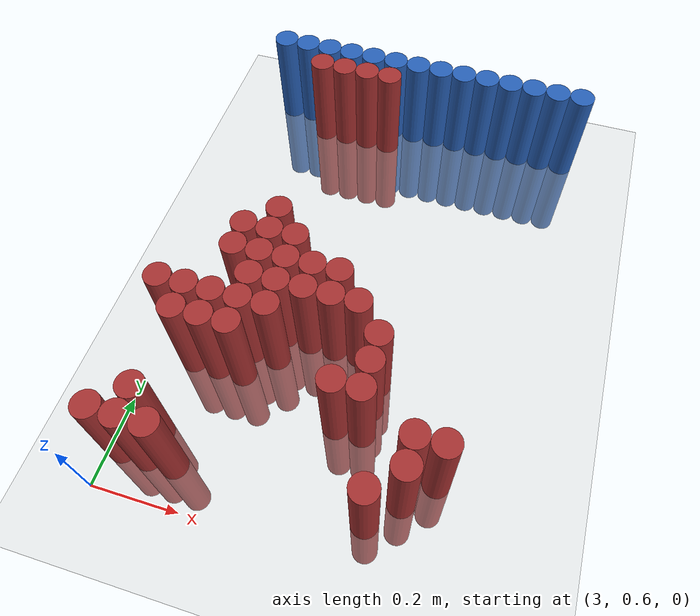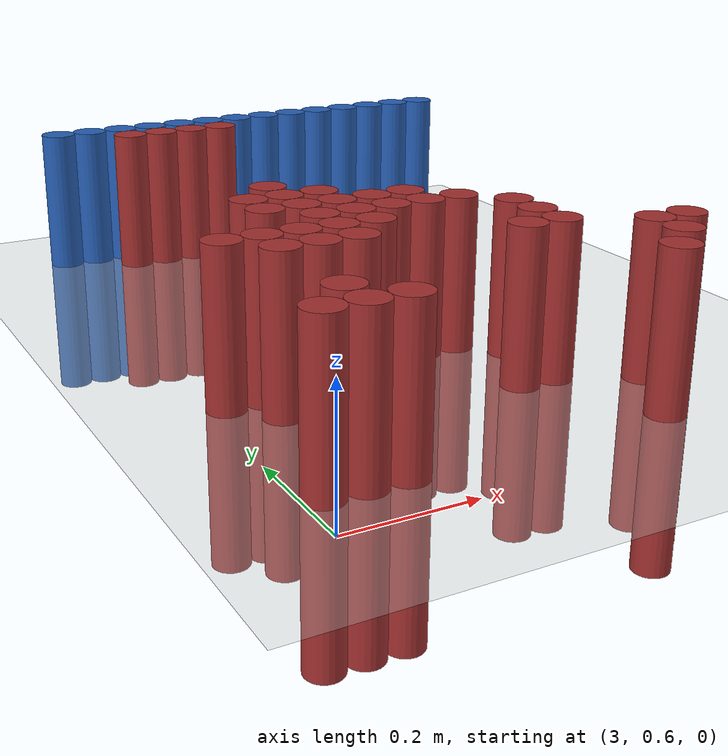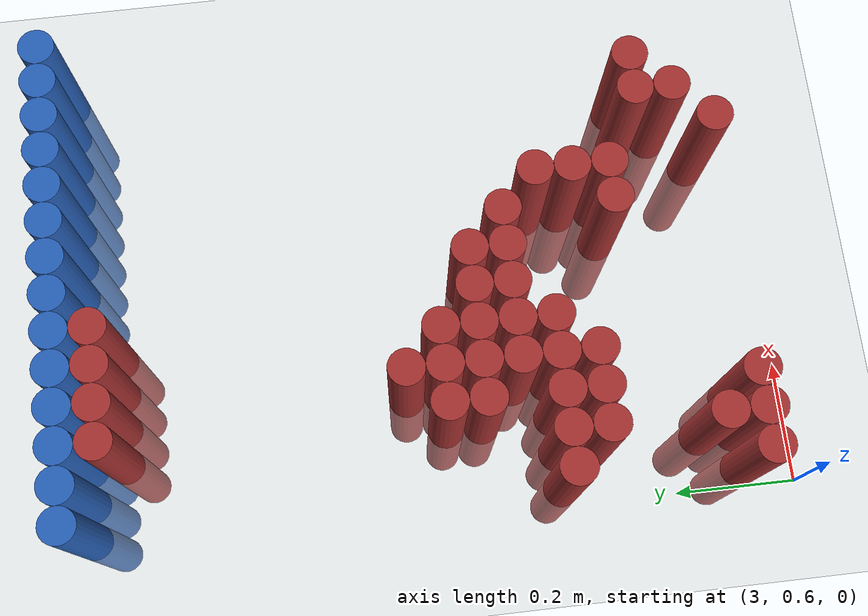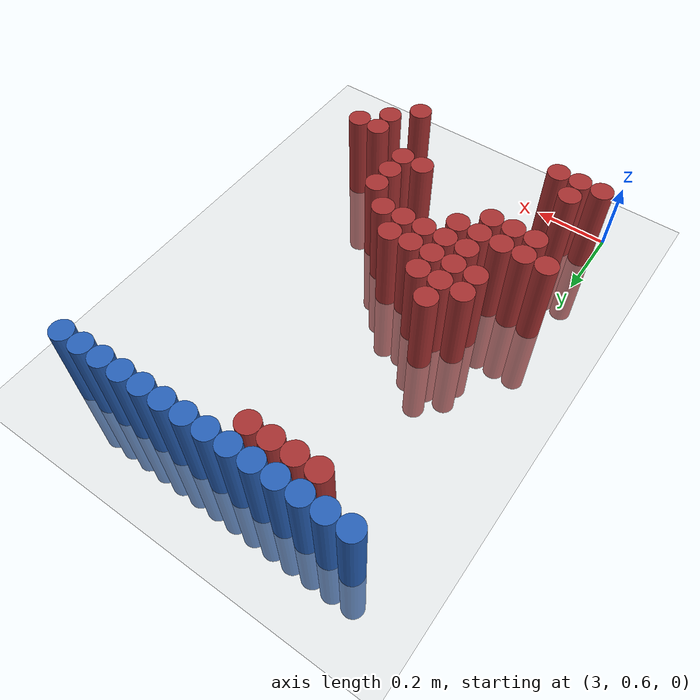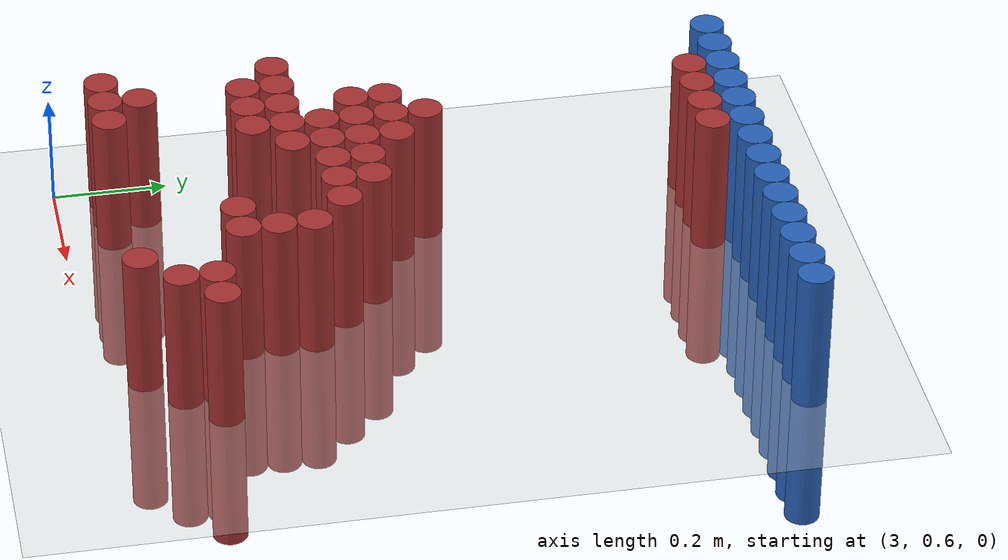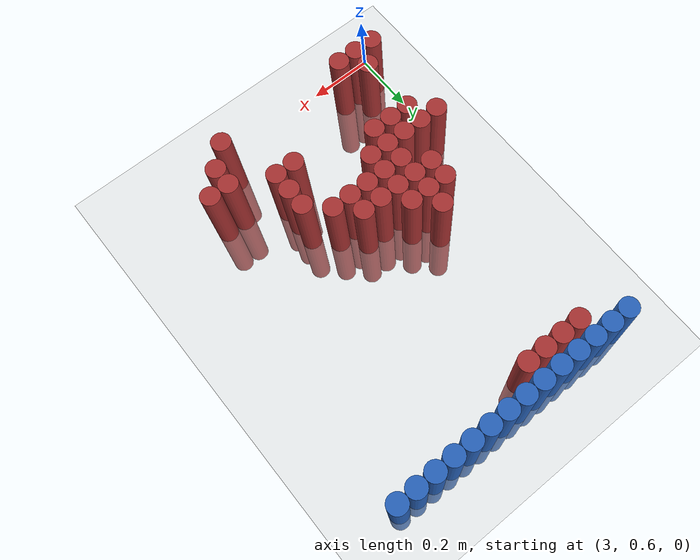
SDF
<sdf version="1.6">
 <world name="default">
  <model name="ground_plane">
   <static>1</static>
   <link name="link">
    <collision name="collision">
     <geometry><plane><normal>0 0 1</normal><size>100 100</size></plane></geometry>
     <surface><friction><ode><mu>100</mu><mu2>50</mu2></ode></friction></surface>
    </collision>
    <visual name="visual">
     <cast_shadows>0</cast_shadows>
     <geometry><plane><normal>0 0 1</normal><size>100 100</size></plane></geometry>
     <material>
      <script><uri>file://media/materials/scripts/gazebo.material</uri><name>Gazebo/Grey</name></script>
     </material>
    </visual>
   </link>
  </model>
  <model name="unit_cylinder_111">
   <static>1</static>
   <pose>3.030000 1.770000 0.000000 0.000000 0.000000 0.000000</pose>
   <link name="link">
    <inertial>
     <mass>1</mass>
     <inertia><ixx>0.145833</ixx><ixy>0</ixy><ixz>0</ixz><iyy>0.145833</iyy><iyz>0</iyz><izz>0.125</izz></inertia>
    </inertial>
    <collision name="collision">
     <geometry><cylinder><radius>0.030000</radius><length>0.5</length></cylinder></geometry>
    </collision>
    <visual name="visual">
     <geometry><cylinder><radius>0.030000</radius><length>0.5</length></cylinder></geometry>
     <material>
      <ambient>0.152000 0.379000 0.720000 1</ambient>
      <diffuse>0.152000 0.379000 0.720000 1</diffuse>
     </material>
     <material>
      <script><name>Gazebo/Grey</name><uri>file://media/materials/scripts/gazebo.material</uri></script>
     </material>
    </visual>
   </link>
  </model>
  <model name="unit_cylinder_112">
   <static>1</static>
   <pose>3.090000 1.770000 0.000000 0.000000 0.000000 0.000000</pose>
   <link name="link">
    <inertial>
     <mass>1</mass>
     <inertia><ixx>0.145833</ixx><ixy>0</ixy><ixz>0</ixz><iyy>0.145833</iyy><iyz>0</iyz><izz>0.125</izz></inertia>
    </inertial>
    <collision name="collision">
     <geometry><cylinder><radius>0.030000</radius><length>0.5</length></cylinder></geometry>
    </collision>
    <visual name="visual">
     <geometry><cylinder><radius>0.030000</radius><length>0.5</length></cylinder></geometry>
     <material>
      <ambient>0.152000 0.379000 0.720000 1</ambient>
      <diffuse>0.152000 0.379000 0.720000 1</diffuse>
     </material>
     <material>
      <script><name>Gazebo/Grey</name><uri>file://media/materials/scripts/gazebo.material</uri></script>
     </material>
    </visual>
   </link>
  </model>
  <model name="unit_cylinder_113">
   <static>1</static>
   <pose>3.150000 1.770000 0.000000 0.000000 0.000000 0.000000</pose>
   <link name="link">
    <inertial>
     <mass>1</mass>
     <inertia><ixx>0.145833</ixx><ixy>0</ixy><ixz>0</ixz><iyy>0.145833</iyy><iyz>0</iyz><izz>0.125</izz></inertia>
    </inertial>
    <collision name="collision">
     <geometry><cylinder><radius>0.030000</radius><length>0.5</length></cylinder></geometry>
    </collision>
    <visual name="visual">
     <geometry><cylinder><radius>0.030000</radius><length>0.5</length></cylinder></geometry>
     <material>
      <ambient>0.152000 0.379000 0.720000 1</ambient>
      <diffuse>0.152000 0.379000 0.720000 1</diffuse>
     </material>
     <material>
      <script><name>Gazebo/Grey</name><uri>file://media/materials/scripts/gazebo.material</uri></script>
     </material>
    </visual>
   </link>
  </model>
  <model name="unit_cylinder_114">
   <static>1</static>
   <pose>3.210000 1.770000 0.000000 0.000000 0.000000 0.000000</pose>
   <link name="link">
    <inertial>
     <mass>1</mass>
     <inertia><ixx>0.145833</ixx><ixy>0</ixy><ixz>0</ixz><iyy>0.145833</iyy><iyz>0</iyz><izz>0.125</izz></inertia>
    </inertial>
    <collision name="collision">
     <geometry><cylinder><radius>0.030000</radius><length>0.5</length></cylinder></geometry>
    </collision>
    <visual name="visual">
     <geometry><cylinder><radius>0.030000</radius><length>0.5</length></cylinder></geometry>
     <material>
      <ambient>0.152000 0.379000 0.720000 1</ambient>
      <diffuse>0.152000 0.379000 0.720000 1</diffuse>
     </material>
     <material>
      <script><name>Gazebo/Grey</name><uri>file://media/materials/scripts/gazebo.material</uri></script>
     </material>
    </visual>
   </link>
  </model>
  <model name="unit_cylinder_115">
   <static>1</static>
   <pose>3.270000 1.770000 0.000000 0.000000 0.000000 0.000000</pose>
   <link name="link">
    <inertial>
     <mass>1</mass>
     <inertia><ixx>0.145833</ixx><ixy>0</ixy><ixz>0</ixz><iyy>0.145833</iyy><iyz>0</iyz><izz>0.125</izz></inertia>
    </inertial>
    <collision name="collision">
     <geometry><cylinder><radius>0.030000</radius><length>0.5</length></cylinder></geometry>
    </collision>
    <visual name="visual">
     <geometry><cylinder><radius>0.030000</radius><length>0.5</length></cylinder></geometry>
     <material>
      <ambient>0.152000 0.379000 0.720000 1</ambient>
      <diffuse>0.152000 0.379000 0.720000 1</diffuse>
     </material>
     <material>
      <script><name>Gazebo/Grey</name><uri>file://media/materials/scripts/gazebo.material</uri></script>
     </material>
    </visual>
   </link>
  </model>
  <model name="unit_cylinder_116">
   <static>1</static>
   <pose>3.330000 1.770000 0.000000 0.000000 0.000000 0.000000</pose>
   <link name="link">
    <inertial>
     <mass>1</mass>
     <inertia><ixx>0.145833</ixx><ixy>0</ixy><ixz>0</ixz><iyy>0.145833</iyy><iyz>0</iyz><izz>0.125</izz></inertia>
    </inertial>
    <collision name="collision">
     <geometry><cylinder><radius>0.030000</radius><length>0.5</length></cylinder></geometry>
    </collision>
    <visual name="visual">
     <geometry><cylinder><radius>0.030000</radius><length>0.5</length></cylinder></geometry>
     <material>
      <ambient>0.152000 0.379000 0.720000 1</ambient>
      <diffuse>0.152000 0.379000 0.720000 1</diffuse>
     </material>
     <material>
      <script><name>Gazebo/Grey</name><uri>file://media/materials/scripts/gazebo.material</uri></script>
     </material>
    </visual>
   </link>
  </model>
  <model name="unit_cylinder_117">
   <static>1</static>
   <pose>3.390000 1.770000 0.000000 0.000000 0.000000 0.000000</pose>
   <link name="link">
    <inertial>
     <mass>1</mass>
     <inertia><ixx>0.145833</ixx><ixy>0</ixy><ixz>0</ixz><iyy>0.145833</iyy><iyz>0</iyz><izz>0.125</izz></inertia>
    </inertial>
    <collision name="collision">
     <geometry><cylinder><radius>0.030000</radius><length>0.5</length></cylinder></geometry>
    </collision>
    <visual name="visual">
     <geometry><cylinder><radius>0.030000</radius><length>0.5</length></cylinder></geometry>
     <material>
      <ambient>0.152000 0.379000 0.720000 1</ambient>
      <diffuse>0.152000 0.379000 0.720000 1</diffuse>
     </material>
     <material>
      <script><name>Gazebo/Grey</name><uri>file://media/materials/scripts/gazebo.material</uri></script>
     </material>
    </visual>
   </link>
  </model>
  <model name="unit_cylinder_118">
   <static>1</static>
   <pose>3.450000 1.770000 0.000000 0.000000 0.000000 0.000000</pose>
   <link name="link">
    <inertial>
     <mass>1</mass>
     <inertia><ixx>0.145833</ixx><ixy>0</ixy><ixz>0</ixz><iyy>0.145833</iyy><iyz>0</iyz><izz>0.125</izz></inertia>
    </inertial>
    <collision name="collision">
     <geometry><cylinder><radius>0.030000</radius><length>0.5</length></cylinder></geometry>
    </collision>
    <visual name="visual">
     <geometry><cylinder><radius>0.030000</radius><length>0.5</length></cylinder></geometry>
     <material>
      <ambient>0.152000 0.379000 0.720000 1</ambient>
      <diffuse>0.152000 0.379000 0.720000 1</diffuse>
     </material>
     <material>
      <script><name>Gazebo/Grey</name><uri>file://media/materials/scripts/gazebo.material</uri></script>
     </material>
    </visual>
   </link>
  </model>
  <model name="unit_cylinder_119">
   <static>1</static>
   <pose>3.510000 1.770000 0.000000 0.000000 0.000000 0.000000</pose>
   <link name="link">
    <inertial>
     <mass>1</mass>
     <inertia><ixx>0.145833</ixx><ixy>0</ixy><ixz>0</ixz><iyy>0.145833</iyy><iyz>0</iyz><izz>0.125</izz></inertia>
    </inertial>
    <collision name="collision">
     <geometry><cylinder><radius>0.030000</radius><length>0.5</length></cylinder></geometry>
    </collision>
    <visual name="visual">
     <geometry><cylinder><radius>0.030000</radius><length>0.5</length></cylinder></geometry>
     <material>
      <ambient>0.152000 0.379000 0.720000 1</ambient>
      <diffuse>0.152000 0.379000 0.720000 1</diffuse>
     </material>
     <material>
      <script><name>Gazebo/Grey</name><uri>file://media/materials/scripts/gazebo.material</uri></script>
     </material>
    </visual>
   </link>
  </model>
  <model name="unit_cylinder_120">
   <static>1</static>
   <pose>3.570000 1.770000 0.000000 0.000000 0.000000 0.000000</pose>
   <link name="link">
    <inertial>
     <mass>1</mass>
     <inertia><ixx>0.145833</ixx><ixy>0</ixy><ixz>0</ixz><iyy>0.145833</iyy><iyz>0</iyz><izz>0.125</izz></inertia>
    </inertial>
    <collision name="collision">
     <geometry><cylinder><radius>0.030000</radius><length>0.5</length></cylinder></geometry>
    </collision>
    <visual name="visual">
     <geometry><cylinder><radius>0.030000</radius><length>0.5</length></cylinder></geometry>
     <material>
      <ambient>0.152000 0.379000 0.720000 1</ambient>
      <diffuse>0.152000 0.379000 0.720000 1</diffuse>
     </material>
     <material>
      <script><name>Gazebo/Grey</name><uri>file://media/materials/scripts/gazebo.material</uri></script>
     </material>
    </visual>
   </link>
  </model>
  <model name="unit_cylinder_121">
   <static>1</static>
   <pose>3.630000 1.770000 0.000000 0.000000 0.000000 0.000000</pose>
   <link name="link">
    <inertial>
     <mass>1</mass>
     <inertia><ixx>0.145833</ixx><ixy>0</ixy><ixz>0</ixz><iyy>0.145833</iyy><iyz>0</iyz><izz>0.125</izz></inertia>
    </inertial>
    <collision name="collision">
     <geometry><cylinder><radius>0.030000</radius><length>0.5</length></cylinder></geometry>
    </collision>
    <visual name="visual">
     <geometry><cylinder><radius>0.030000</radius><length>0.5</length></cylinder></geometry>
     <material>
      <ambient>0.152000 0.379000 0.720000 1</ambient>
      <diffuse>0.152000 0.379000 0.720000 1</diffuse>
     </material>
     <material>
      <script><name>Gazebo/Grey</name><uri>file://media/materials/scripts/gazebo.material</uri></script>
     </material>
    </visual>
   </link>
  </model>
  <model name="unit_cylinder_122">
   <static>1</static>
   <pose>3.690000 1.770000 0.000000 0.000000 0.000000 0.000000</pose>
   <link name="link">
    <inertial>
     <mass>1</mass>
     <inertia><ixx>0.145833</ixx><ixy>0</ixy><ixz>0</ixz><iyy>0.145833</iyy><iyz>0</iyz><izz>0.125</izz></inertia>
    </inertial>
    <collision name="collision">
     <geometry><cylinder><radius>0.030000</radius><length>0.5</length></cylinder></geometry>
    </collision>
    <visual name="visual">
     <geometry><cylinder><radius>0.030000</radius><length>0.5</length></cylinder></geometry>
     <material>
      <ambient>0.152000 0.379000 0.720000 1</ambient>
      <diffuse>0.152000 0.379000 0.720000 1</diffuse>
     </material>
     <material>
      <script><name>Gazebo/Grey</name><uri>file://media/materials/scripts/gazebo.material</uri></script>
     </material>
    </visual>
   </link>
  </model>
  <model name="unit_cylinder_123">
   <static>1</static>
   <pose>3.750000 1.770000 0.000000 0.000000 0.000000 0.000000</pose>
   <link name="link">
    <inertial>
     <mass>1</mass>
     <inertia><ixx>0.145833</ixx><ixy>0</ixy><ixz>0</ixz><iyy>0.145833</iyy><iyz>0</iyz><izz>0.125</izz></inertia>
    </inertial>
    <collision name="collision">
     <geometry><cylinder><radius>0.030000</radius><length>0.5</length></cylinder></geometry>
    </collision>
    <visual name="visual">
     <geometry><cylinder><radius>0.030000</radius><length>0.5</length></cylinder></geometry>
     <material>
      <ambient>0.152000 0.379000 0.720000 1</ambient>
      <diffuse>0.152000 0.379000 0.720000 1</diffuse>
     </material>
     <material>
      <script><name>Gazebo/Grey</name><uri>file://media/materials/scripts/gazebo.material</uri></script>
     </material>
    </visual>
   </link>
  </model>
  <model name="unit_cylinder_124">
   <static>1</static>
   <pose>3.810000 1.770000 0.000000 0.000000 0.000000 0.000000</pose>
   <link name="link">
    <inertial>
     <mass>1</mass>
     <inertia><ixx>0.145833</ixx><ixy>0</ixy><ixz>0</ixz><iyy>0.145833</iyy><iyz>0</iyz><izz>0.125</izz></inertia>
    </inertial>
    <collision name="collision">
     <geometry><cylinder><radius>0.030000</radius><length>0.5</length></cylinder></geometry>
    </collision>
    <visual name="visual">
     <geometry><cylinder><radius>0.030000</radius><length>0.5</length></cylinder></geometry>
     <material>
      <ambient>0.152000 0.379000 0.720000 1</ambient>
      <diffuse>0.152000 0.379000 0.720000 1</diffuse>
     </material>
     <material>
      <script><name>Gazebo/Grey</name><uri>file://media/materials/scripts/gazebo.material</uri></script>
     </material>
    </visual>
   </link>
  </model>
  <model name="unit_cylinder_135">
   <static>1</static>
   <pose>3.150000 1.710000 0.000000 0.000000 0.000000 0.000000</pose>
   <link name="link">
    <inertial>
     <mass>1</mass>
     <inertia><ixx>0.145833</ixx><ixy>0</ixy><ixz>0</ixz><iyy>0.145833</iyy><iyz>0</iyz><izz>0.125</izz></inertia>
    </inertial>
    <collision name="collision">
     <geometry><cylinder><radius>0.030000</radius><length>0.5</length></cylinder></geometry>
    </collision>
    <visual name="visual">
     <geometry><cylinder><radius>0.030000</radius><length>0.5</length></cylinder></geometry>
     <material>
      <ambient>0.648000 0.192000 0.192000 1</ambient>
      <diffuse>0.648000 0.192000 0.192000 1</diffuse>
     </material>
     <material>
      <script><name>Gazebo/Grey</name><uri>file://media/materials/scripts/gazebo.material</uri></script>
     </material>
    </visual>
   </link>
  </model>
  <model name="unit_cylinder_136">
   <static>1</static>
   <pose>3.210000 1.710000 0.000000 0.000000 0.000000 0.000000</pose>
   <link name="link">
    <inertial>
     <mass>1</mass>
     <inertia><ixx>0.145833</ixx><ixy>0</ixy><ixz>0</ixz><iyy>0.145833</iyy><iyz>0</iyz><izz>0.125</izz></inertia>
    </inertial>
    <collision name="collision">
     <geometry><cylinder><radius>0.030000</radius><length>0.5</length></cylinder></geometry>
    </collision>
    <visual name="visual">
     <geometry><cylinder><radius>0.030000</radius><length>0.5</length></cylinder></geometry>
     <material>
      <ambient>0.648000 0.192000 0.192000 1</ambient>
      <diffuse>0.648000 0.192000 0.192000 1</diffuse>
     </material>
     <material>
      <script><name>Gazebo/Grey</name><uri>file://media/materials/scripts/gazebo.material</uri></script>
     </material>
    </visual>
   </link>
  </model>
  <model name="unit_cylinder_137">
   <static>1</static>
   <pose>3.270000 1.710000 0.000000 0.000000 0.000000 0.000000</pose>
   <link name="link">
    <inertial>
     <mass>1</mass>
     <inertia><ixx>0.145833</ixx><ixy>0</ixy><ixz>0</ixz><iyy>0.145833</iyy><iyz>0</iyz><izz>0.125</izz></inertia>
    </inertial>
    <collision name="collision">
     <geometry><cylinder><radius>0.030000</radius><length>0.5</length></cylinder></geometry>
    </collision>
    <visual name="visual">
     <geometry><cylinder><radius>0.030000</radius><length>0.5</length></cylinder></geometry>
     <material>
      <ambient>0.648000 0.192000 0.192000 1</ambient>
      <diffuse>0.648000 0.192000 0.192000 1</diffuse>
     </material>
     <material>
      <script><name>Gazebo/Grey</name><uri>file://media/materials/scripts/gazebo.material</uri></script>
     </material>
    </visual>
   </link>
  </model>
  <model name="unit_cylinder_138">
   <static>1</static>
   <pose>3.330000 1.710000 0.000000 0.000000 0.000000 0.000000</pose>
   <link name="link">
    <inertial>
     <mass>1</mass>
     <inertia><ixx>0.145833</ixx><ixy>0</ixy><ixz>0</ixz><iyy>0.145833</iyy><iyz>0</iyz><izz>0.125</izz></inertia>
    </inertial>
    <collision name="collision">
     <geometry><cylinder><radius>0.030000</radius><length>0.5</length></cylinder></geometry>
    </collision>
    <visual name="visual">
     <geometry><cylinder><radius>0.030000</radius><length>0.5</length></cylinder></geometry>
     <material>
      <ambient>0.648000 0.192000 0.192000 1</ambient>
      <diffuse>0.648000 0.192000 0.192000 1</diffuse>
     </material>
     <material>
      <script><name>Gazebo/Grey</name><uri>file://media/materials/scripts/gazebo.material</uri></script>
     </material>
    </visual>
   </link>
  </model>
  <model name="unit_cylinder_150">
   <static>1</static>
   <pose>3.210000 1.230000 0.000000 0.000000 0.000000 0.000000</pose>
   <link name="link">
    <inertial>
     <mass>1</mass>
     <inertia><ixx>0.145833</ixx><ixy>0</ixy><ixz>0</ixz><iyy>0.145833</iyy><iyz>0</iyz><izz>0.125</izz></inertia>
    </inertial>
    <collision name="collision">
     <geometry><cylinder><radius>0.030000</radius><length>0.5</length></cylinder></geometry>
    </collision>
    <visual name="visual">
     <geometry><cylinder><radius>0.030000</radius><length>0.5</length></cylinder></geometry>
     <material>
      <ambient>0.648000 0.192000 0.192000 1</ambient>
      <diffuse>0.648000 0.192000 0.192000 1</diffuse>
     </material>
     <material>
      <script><name>Gazebo/Grey</name><uri>file://media/materials/scripts/gazebo.material</uri></script>
     </material>
    </visual>
   </link>
  </model>
  <model name="unit_cylinder_154">
   <static>1</static>
   <pose>3.150000 1.170000 0.000000 0.000000 0.000000 0.000000</pose>
   <link name="link">
    <inertial>
     <mass>1</mass>
     <inertia><ixx>0.145833</ixx><ixy>0</ixy><ixz>0</ixz><iyy>0.145833</iyy><iyz>0</iyz><izz>0.125</izz></inertia>
    </inertial>
    <collision name="collision">
     <geometry><cylinder><radius>0.030000</radius><length>0.5</length></cylinder></geometry>
    </collision>
    <visual name="visual">
     <geometry><cylinder><radius>0.030000</radius><length>0.5</length></cylinder></geometry>
     <material>
      <ambient>0.648000 0.192000 0.192000 1</ambient>
      <diffuse>0.648000 0.192000 0.192000 1</diffuse>
     </material>
     <material>
      <script><name>Gazebo/Grey</name><uri>file://media/materials/scripts/gazebo.material</uri></script>
     </material>
    </visual>
   </link>
  </model>
  <model name="unit_cylinder_155">
   <static>1</static>
   <pose>3.210000 1.170000 0.000000 0.000000 0.000000 0.000000</pose>
   <link name="link">
    <inertial>
     <mass>1</mass>
     <inertia><ixx>0.145833</ixx><ixy>0</ixy><ixz>0</ixz><iyy>0.145833</iyy><iyz>0</iyz><izz>0.125</izz></inertia>
    </inertial>
    <collision name="collision">
     <geometry><cylinder><radius>0.030000</radius><length>0.5</length></cylinder></geometry>
    </collision>
    <visual name="visual">
     <geometry><cylinder><radius>0.030000</radius><length>0.5</length></cylinder></geometry>
     <material>
      <ambient>0.648000 0.192000 0.192000 1</ambient>
      <diffuse>0.648000 0.192000 0.192000 1</diffuse>
     </material>
     <material>
      <script><name>Gazebo/Grey</name><uri>file://media/materials/scripts/gazebo.material</uri></script>
     </material>
    </visual>
   </link>
  </model>
  <model name="unit_cylinder_156">
   <static>1</static>
   <pose>3.270000 1.170000 0.000000 0.000000 0.000000 0.000000</pose>
   <link name="link">
    <inertial>
     <mass>1</mass>
     <inertia><ixx>0.145833</ixx><ixy>0</ixy><ixz>0</ixz><iyy>0.145833</iyy><iyz>0</iyz><izz>0.125</izz></inertia>
    </inertial>
    <collision name="collision">
     <geometry><cylinder><radius>0.030000</radius><length>0.5</length></cylinder></geometry>
    </collision>
    <visual name="visual">
     <geometry><cylinder><radius>0.030000</radius><length>0.5</length></cylinder></geometry>
     <material>
      <ambient>0.648000 0.192000 0.192000 1</ambient>
      <diffuse>0.648000 0.192000 0.192000 1</diffuse>
     </material>
     <material>
      <script><name>Gazebo/Grey</name><uri>file://media/materials/scripts/gazebo.material</uri></script>
     </material>
    </visual>
   </link>
  </model>
  <model name="unit_cylinder_162">
   <static>1</static>
   <pose>3.150000 1.110000 0.000000 0.000000 0.000000 0.000000</pose>
   <link name="link">
    <inertial>
     <mass>1</mass>
     <inertia><ixx>0.145833</ixx><ixy>0</ixy><ixz>0</ixz><iyy>0.145833</iyy><iyz>0</iyz><izz>0.125</izz></inertia>
    </inertial>
    <collision name="collision">
     <geometry><cylinder><radius>0.030000</radius><length>0.5</length></cylinder></geometry>
    </collision>
    <visual name="visual">
     <geometry><cylinder><radius>0.030000</radius><length>0.5</length></cylinder></geometry>
     <material>
      <ambient>0.648000 0.192000 0.192000 1</ambient>
      <diffuse>0.648000 0.192000 0.192000 1</diffuse>
     </material>
     <material>
      <script><name>Gazebo/Grey</name><uri>file://media/materials/scripts/gazebo.material</uri></script>
     </material>
    </visual>
   </link>
  </model>
  <model name="unit_cylinder_163">
   <static>1</static>
   <pose>3.210000 1.110000 0.000000 0.000000 0.000000 0.000000</pose>
   <link name="link">
    <inertial>
     <mass>1</mass>
     <inertia><ixx>0.145833</ixx><ixy>0</ixy><ixz>0</ixz><iyy>0.145833</iyy><iyz>0</iyz><izz>0.125</izz></inertia>
    </inertial>
    <collision name="collision">
     <geometry><cylinder><radius>0.030000</radius><length>0.5</length></cylinder></geometry>
    </collision>
    <visual name="visual">
     <geometry><cylinder><radius>0.030000</radius><length>0.5</length></cylinder></geometry>
     <material>
      <ambient>0.648000 0.192000 0.192000 1</ambient>
      <diffuse>0.648000 0.192000 0.192000 1</diffuse>
     </material>
     <material>
      <script><name>Gazebo/Grey</name><uri>file://media/materials/scripts/gazebo.material</uri></script>
     </material>
    </visual>
   </link>
  </model>
  <model name="unit_cylinder_164">
   <static>1</static>
   <pose>3.270000 1.110000 0.000000 0.000000 0.000000 0.000000</pose>
   <link name="link">
    <inertial>
     <mass>1</mass>
     <inertia><ixx>0.145833</ixx><ixy>0</ixy><ixz>0</ixz><iyy>0.145833</iyy><iyz>0</iyz><izz>0.125</izz></inertia>
    </inertial>
    <collision name="collision">
     <geometry><cylinder><radius>0.030000</radius><length>0.5</length></cylinder></geometry>
    </collision>
    <visual name="visual">
     <geometry><cylinder><radius>0.030000</radius><length>0.5</length></cylinder></geometry>
     <material>
      <ambient>0.648000 0.192000 0.192000 1</ambient>
      <diffuse>0.648000 0.192000 0.192000 1</diffuse>
     </material>
     <material>
      <script><name>Gazebo/Grey</name><uri>file://media/materials/scripts/gazebo.material</uri></script>
     </material>
    </visual>
   </link>
  </model>
  <model name="unit_cylinder_165">
   <static>1</static>
   <pose>3.330000 1.110000 0.000000 0.000000 0.000000 0.000000</pose>
   <link name="link">
    <inertial>
     <mass>1</mass>
     <inertia><ixx>0.145833</ixx><ixy>0</ixy><ixz>0</ixz><iyy>0.145833</iyy><iyz>0</iyz><izz>0.125</izz></inertia>
    </inertial>
    <collision name="collision">
     <geometry><cylinder><radius>0.030000</radius><length>0.5</length></cylinder></geometry>
    </collision>
    <visual name="visual">
     <geometry><cylinder><radius>0.030000</radius><length>0.5</length></cylinder></geometry>
     <material>
      <ambient>0.648000 0.192000 0.192000 1</ambient>
      <diffuse>0.648000 0.192000 0.192000 1</diffuse>
     </material>
     <material>
      <script><name>Gazebo/Grey</name><uri>file://media/materials/scripts/gazebo.material</uri></script>
     </material>
    </visual>
   </link>
  </model>
  <model name="unit_cylinder_166">
   <static>1</static>
   <pose>3.390000 1.110000 0.000000 0.000000 0.000000 0.000000</pose>
   <link name="link">
    <inertial>
     <mass>1</mass>
     <inertia><ixx>0.145833</ixx><ixy>0</ixy><ixz>0</ixz><iyy>0.145833</iyy><iyz>0</iyz><izz>0.125</izz></inertia>
    </inertial>
    <collision name="collision">
     <geometry><cylinder><radius>0.030000</radius><length>0.5</length></cylinder></geometry>
    </collision>
    <visual name="visual">
     <geometry><cylinder><radius>0.030000</radius><length>0.5</length></cylinder></geometry>
     <material>
      <ambient>0.648000 0.192000 0.192000 1</ambient>
      <diffuse>0.648000 0.192000 0.192000 1</diffuse>
     </material>
     <material>
      <script><name>Gazebo/Grey</name><uri>file://media/materials/scripts/gazebo.material</uri></script>
     </material>
    </visual>
   </link>
  </model>
  <model name="unit_cylinder_173">
   <static>1</static>
   <pose>3.210000 1.050000 0.000000 0.000000 0.000000 0.000000</pose>
   <link name="link">
    <inertial>
     <mass>1</mass>
     <inertia><ixx>0.145833</ixx><ixy>0</ixy><ixz>0</ixz><iyy>0.145833</iyy><iyz>0</iyz><izz>0.125</izz></inertia>
    </inertial>
    <collision name="collision">
     <geometry><cylinder><radius>0.030000</radius><length>0.5</length></cylinder></geometry>
    </collision>
    <visual name="visual">
     <geometry><cylinder><radius>0.030000</radius><length>0.5</length></cylinder></geometry>
     <material>
      <ambient>0.648000 0.192000 0.192000 1</ambient>
      <diffuse>0.648000 0.192000 0.192000 1</diffuse>
     </material>
     <material>
      <script><name>Gazebo/Grey</name><uri>file://media/materials/scripts/gazebo.material</uri></script>
     </material>
    </visual>
   </link>
  </model>
  <model name="unit_cylinder_174">
   <static>1</static>
   <pose>3.270000 1.050000 0.000000 0.000000 0.000000 0.000000</pose>
   <link name="link">
    <inertial>
     <mass>1</mass>
     <inertia><ixx>0.145833</ixx><ixy>0</ixy><ixz>0</ixz><iyy>0.145833</iyy><iyz>0</iyz><izz>0.125</izz></inertia>
    </inertial>
    <collision name="collision">
     <geometry><cylinder><radius>0.030000</radius><length>0.5</length></cylinder></geometry>
    </collision>
    <visual name="visual">
     <geometry><cylinder><radius>0.030000</radius><length>0.5</length></cylinder></geometry>
     <material>
      <ambient>0.648000 0.192000 0.192000 1</ambient>
      <diffuse>0.648000 0.192000 0.192000 1</diffuse>
     </material>
     <material>
      <script><name>Gazebo/Grey</name><uri>file://media/materials/scripts/gazebo.material</uri></script>
     </material>
    </visual>
   </link>
  </model>
  <model name="unit_cylinder_175">
   <static>1</static>
   <pose>3.330000 1.050000 0.000000 0.000000 0.000000 0.000000</pose>
   <link name="link">
    <inertial>
     <mass>1</mass>
     <inertia><ixx>0.145833</ixx><ixy>0</ixy><ixz>0</ixz><iyy>0.145833</iyy><iyz>0</iyz><izz>0.125</izz></inertia>
    </inertial>
    <collision name="collision">
     <geometry><cylinder><radius>0.030000</radius><length>0.5</length></cylinder></geometry>
    </collision>
    <visual name="visual">
     <geometry><cylinder><radius>0.030000</radius><length>0.5</length></cylinder></geometry>
     <material>
      <ambient>0.648000 0.192000 0.192000 1</ambient>
      <diffuse>0.648000 0.192000 0.192000 1</diffuse>
     </material>
     <material>
      <script><name>Gazebo/Grey</name><uri>file://media/materials/scripts/gazebo.material</uri></script>
     </material>
    </visual>
   </link>
  </model>
  <model name="unit_cylinder_176">
   <static>1</static>
   <pose>3.390000 1.050000 0.000000 0.000000 0.000000 0.000000</pose>
   <link name="link">
    <inertial>
     <mass>1</mass>
     <inertia><ixx>0.145833</ixx><ixy>0</ixy><ixz>0</ixz><iyy>0.145833</iyy><iyz>0</iyz><izz>0.125</izz></inertia>
    </inertial>
    <collision name="collision">
     <geometry><cylinder><radius>0.030000</radius><length>0.5</length></cylinder></geometry>
    </collision>
    <visual name="visual">
     <geometry><cylinder><radius>0.030000</radius><length>0.5</length></cylinder></geometry>
     <material>
      <ambient>0.648000 0.192000 0.192000 1</ambient>
      <diffuse>0.648000 0.192000 0.192000 1</diffuse>
     </material>
     <material>
      <script><name>Gazebo/Grey</name><uri>file://media/materials/scripts/gazebo.material</uri></script>
     </material>
    </visual>
   </link>
  </model>
  <model name="unit_cylinder_177">
   <static>1</static>
   <pose>3.450000 1.050000 0.000000 0.000000 0.000000 0.000000</pose>
   <link name="link">
    <inertial>
     <mass>1</mass>
     <inertia><ixx>0.145833</ixx><ixy>0</ixy><ixz>0</ixz><iyy>0.145833</iyy><iyz>0</iyz><izz>0.125</izz></inertia>
    </inertial>
    <collision name="collision">
     <geometry><cylinder><radius>0.030000</radius><length>0.5</length></cylinder></geometry>
    </collision>
    <visual name="visual">
     <geometry><cylinder><radius>0.030000</radius><length>0.5</length></cylinder></geometry>
     <material>
      <ambient>0.648000 0.192000 0.192000 1</ambient>
      <diffuse>0.648000 0.192000 0.192000 1</diffuse>
     </material>
     <material>
      <script><name>Gazebo/Grey</name><uri>file://media/materials/scripts/gazebo.material</uri></script>
     </material>
    </visual>
   </link>
  </model>
  <model name="unit_cylinder_185">
   <static>1</static>
   <pose>3.030000 0.990000 0.000000 0.000000 0.000000 0.000000</pose>
   <link name="link">
    <inertial>
     <mass>1</mass>
     <inertia><ixx>0.145833</ixx><ixy>0</ixy><ixz>0</ixz><iyy>0.145833</iyy><iyz>0</iyz><izz>0.125</izz></inertia>
    </inertial>
    <collision name="collision">
     <geometry><cylinder><radius>0.030000</radius><length>0.5</length></cylinder></geometry>
    </collision>
    <visual name="visual">
     <geometry><cylinder><radius>0.030000</radius><length>0.5</length></cylinder></geometry>
     <material>
      <ambient>0.648000 0.192000 0.192000 1</ambient>
      <diffuse>0.648000 0.192000 0.192000 1</diffuse>
     </material>
     <material>
      <script><name>Gazebo/Grey</name><uri>file://media/materials/scripts/gazebo.material</uri></script>
     </material>
    </visual>
   </link>
  </model>
  <model name="unit_cylinder_186">
   <static>1</static>
   <pose>3.090000 0.990000 0.000000 0.000000 0.000000 0.000000</pose>
   <link name="link">
    <inertial>
     <mass>1</mass>
     <inertia><ixx>0.145833</ixx><ixy>0</ixy><ixz>0</ixz><iyy>0.145833</iyy><iyz>0</iyz><izz>0.125</izz></inertia>
    </inertial>
    <collision name="collision">
     <geometry><cylinder><radius>0.030000</radius><length>0.5</length></cylinder></geometry>
    </collision>
    <visual name="visual">
     <geometry><cylinder><radius>0.030000</radius><length>0.5</length></cylinder></geometry>
     <material>
      <ambient>0.648000 0.192000 0.192000 1</ambient>
      <diffuse>0.648000 0.192000 0.192000 1</diffuse>
     </material>
     <material>
      <script><name>Gazebo/Grey</name><uri>file://media/materials/scripts/gazebo.material</uri></script>
     </material>
    </visual>
   </link>
  </model>
  <model name="unit_cylinder_187">
   <static>1</static>
   <pose>3.150000 0.990000 0.000000 0.000000 0.000000 0.000000</pose>
   <link name="link">
    <inertial>
     <mass>1</mass>
     <inertia><ixx>0.145833</ixx><ixy>0</ixy><ixz>0</ixz><iyy>0.145833</iyy><iyz>0</iyz><izz>0.125</izz></inertia>
    </inertial>
    <collision name="collision">
     <geometry><cylinder><radius>0.030000</radius><length>0.5</length></cylinder></geometry>
    </collision>
    <visual name="visual">
     <geometry><cylinder><radius>0.030000</radius><length>0.5</length></cylinder></geometry>
     <material>
      <ambient>0.648000 0.192000 0.192000 1</ambient>
      <diffuse>0.648000 0.192000 0.192000 1</diffuse>
     </material>
     <material>
      <script><name>Gazebo/Grey</name><uri>file://media/materials/scripts/gazebo.material</uri></script>
     </material>
    </visual>
   </link>
  </model>
  <model name="unit_cylinder_188">
   <static>1</static>
   <pose>3.210000 0.990000 0.000000 0.000000 0.000000 0.000000</pose>
   <link name="link">
    <inertial>
     <mass>1</mass>
     <inertia><ixx>0.145833</ixx><ixy>0</ixy><ixz>0</ixz><iyy>0.145833</iyy><iyz>0</iyz><izz>0.125</izz></inertia>
    </inertial>
    <collision name="collision">
     <geometry><cylinder><radius>0.030000</radius><length>0.5</length></cylinder></geometry>
    </collision>
    <visual name="visual">
     <geometry><cylinder><radius>0.030000</radius><length>0.5</length></cylinder></geometry>
     <material>
      <ambient>0.648000 0.192000 0.192000 1</ambient>
      <diffuse>0.648000 0.192000 0.192000 1</diffuse>
     </material>
     <material>
      <script><name>Gazebo/Grey</name><uri>file://media/materials/scripts/gazebo.material</uri></script>
     </material>
    </visual>
   </link>
  </model>
  <model name="unit_cylinder_189">
   <static>1</static>
   <pose>3.270000 0.990000 0.000000 0.000000 0.000000 0.000000</pose>
   <link name="link">
    <inertial>
     <mass>1</mass>
     <inertia><ixx>0.145833</ixx><ixy>0</ixy><ixz>0</ixz><iyy>0.145833</iyy><iyz>0</iyz><izz>0.125</izz></inertia>
    </inertial>
    <collision name="collision">
     <geometry><cylinder><radius>0.030000</radius><length>0.5</length></cylinder></geometry>
    </collision>
    <visual name="visual">
     <geometry><cylinder><radius>0.030000</radius><length>0.5</length></cylinder></geometry>
     <material>
      <ambient>0.648000 0.192000 0.192000 1</ambient>
      <diffuse>0.648000 0.192000 0.192000 1</diffuse>
     </material>
     <material>
      <script><name>Gazebo/Grey</name><uri>file://media/materials/scripts/gazebo.material</uri></script>
     </material>
    </visual>
   </link>
  </model>
  <model name="unit_cylinder_190">
   <static>1</static>
   <pose>3.510000 0.990000 0.000000 0.000000 0.000000 0.000000</pose>
   <link name="link">
    <inertial>
     <mass>1</mass>
     <inertia><ixx>0.145833</ixx><ixy>0</ixy><ixz>0</ixz><iyy>0.145833</iyy><iyz>0</iyz><izz>0.125</izz></inertia>
    </inertial>
    <collision name="collision">
     <geometry><cylinder><radius>0.030000</radius><length>0.5</length></cylinder></geometry>
    </collision>
    <visual name="visual">
     <geometry><cylinder><radius>0.030000</radius><length>0.5</length></cylinder></geometry>
     <material>
      <ambient>0.648000 0.192000 0.192000 1</ambient>
      <diffuse>0.648000 0.192000 0.192000 1</diffuse>
     </material>
     <material>
      <script><name>Gazebo/Grey</name><uri>file://media/materials/scripts/gazebo.material</uri></script>
     </material>
    </visual>
   </link>
  </model>
  <model name="unit_cylinder_195">
   <static>1</static>
   <pose>3.090000 0.930000 0.000000 0.000000 0.000000 0.000000</pose>
   <link name="link">
    <inertial>
     <mass>1</mass>
     <inertia><ixx>0.145833</ixx><ixy>0</ixy><ixz>0</ixz><iyy>0.145833</iyy><iyz>0</iyz><izz>0.125</izz></inertia>
    </inertial>
    <collision name="collision">
     <geometry><cylinder><radius>0.030000</radius><length>0.5</length></cylinder></geometry>
    </collision>
    <visual name="visual">
     <geometry><cylinder><radius>0.030000</radius><length>0.5</length></cylinder></geometry>
     <material>
      <ambient>0.648000 0.192000 0.192000 1</ambient>
      <diffuse>0.648000 0.192000 0.192000 1</diffuse>
     </material>
     <material>
      <script><name>Gazebo/Grey</name><uri>file://media/materials/scripts/gazebo.material</uri></script>
     </material>
    </visual>
   </link>
  </model>
  <model name="unit_cylinder_196">
   <static>1</static>
   <pose>3.150000 0.930000 0.000000 0.000000 0.000000 0.000000</pose>
   <link name="link">
    <inertial>
     <mass>1</mass>
     <inertia><ixx>0.145833</ixx><ixy>0</ixy><ixz>0</ixz><iyy>0.145833</iyy><iyz>0</iyz><izz>0.125</izz></inertia>
    </inertial>
    <collision name="collision">
     <geometry><cylinder><radius>0.030000</radius><length>0.5</length></cylinder></geometry>
    </collision>
    <visual name="visual">
     <geometry><cylinder><radius>0.030000</radius><length>0.5</length></cylinder></geometry>
     <material>
      <ambient>0.648000 0.192000 0.192000 1</ambient>
      <diffuse>0.648000 0.192000 0.192000 1</diffuse>
     </material>
     <material>
      <script><name>Gazebo/Grey</name><uri>file://media/materials/scripts/gazebo.material</uri></script>
     </material>
    </visual>
   </link>
  </model>
  <model name="unit_cylinder_197">
   <static>1</static>
   <pose>3.210000 0.930000 0.000000 0.000000 0.000000 0.000000</pose>
   <link name="link">
    <inertial>
     <mass>1</mass>
     <inertia><ixx>0.145833</ixx><ixy>0</ixy><ixz>0</ixz><iyy>0.145833</iyy><iyz>0</iyz><izz>0.125</izz></inertia>
    </inertial>
    <collision name="collision">
     <geometry><cylinder><radius>0.030000</radius><length>0.5</length></cylinder></geometry>
    </collision>
    <visual name="visual">
     <geometry><cylinder><radius>0.030000</radius><length>0.5</length></cylinder></geometry>
     <material>
      <ambient>0.648000 0.192000 0.192000 1</ambient>
      <diffuse>0.648000 0.192000 0.192000 1</diffuse>
     </material>
     <material>
      <script><name>Gazebo/Grey</name><uri>file://media/materials/scripts/gazebo.material</uri></script>
     </material>
    </visual>
   </link>
  </model>
  <model name="unit_cylinder_198">
   <static>1</static>
   <pose>3.510000 0.930000 0.000000 0.000000 0.000000 0.000000</pose>
   <link name="link">
    <inertial>
     <mass>1</mass>
     <inertia><ixx>0.145833</ixx><ixy>0</ixy><ixz>0</ixz><iyy>0.145833</iyy><iyz>0</iyz><izz>0.125</izz></inertia>
    </inertial>
    <collision name="collision">
     <geometry><cylinder><radius>0.030000</radius><length>0.5</length></cylinder></geometry>
    </collision>
    <visual name="visual">
     <geometry><cylinder><radius>0.030000</radius><length>0.5</length></cylinder></geometry>
     <material>
      <ambient>0.648000 0.192000 0.192000 1</ambient>
      <diffuse>0.648000 0.192000 0.192000 1</diffuse>
     </material>
     <material>
      <script><name>Gazebo/Grey</name><uri>file://media/materials/scripts/gazebo.material</uri></script>
     </material>
    </visual>
   </link>
  </model>
  <model name="unit_cylinder_204">
   <static>1</static>
   <pose>3.450000 0.870000 0.000000 0.000000 0.000000 0.000000</pose>
   <link name="link">
    <inertial>
     <mass>1</mass>
     <inertia><ixx>0.145833</ixx><ixy>0</ixy><ixz>0</ixz><iyy>0.145833</iyy><iyz>0</iyz><izz>0.125</izz></inertia>
    </inertial>
    <collision name="collision">
     <geometry><cylinder><radius>0.030000</radius><length>0.5</length></cylinder></geometry>
    </collision>
    <visual name="visual">
     <geometry><cylinder><radius>0.030000</radius><length>0.5</length></cylinder></geometry>
     <material>
      <ambient>0.648000 0.192000 0.192000 1</ambient>
      <diffuse>0.648000 0.192000 0.192000 1</diffuse>
     </material>
     <material>
      <script><name>Gazebo/Grey</name><uri>file://media/materials/scripts/gazebo.material</uri></script>
     </material>
    </visual>
   </link>
  </model>
  <model name="unit_cylinder_205">
   <static>1</static>
   <pose>3.510000 0.870000 0.000000 0.000000 0.000000 0.000000</pose>
   <link name="link">
    <inertial>
     <mass>1</mass>
     <inertia><ixx>0.145833</ixx><ixy>0</ixy><ixz>0</ixz><iyy>0.145833</iyy><iyz>0</iyz><izz>0.125</izz></inertia>
    </inertial>
    <collision name="collision">
     <geometry><cylinder><radius>0.030000</radius><length>0.5</length></cylinder></geometry>
    </collision>
    <visual name="visual">
     <geometry><cylinder><radius>0.030000</radius><length>0.5</length></cylinder></geometry>
     <material>
      <ambient>0.648000 0.192000 0.192000 1</ambient>
      <diffuse>0.648000 0.192000 0.192000 1</diffuse>
     </material>
     <material>
      <script><name>Gazebo/Grey</name><uri>file://media/materials/scripts/gazebo.material</uri></script>
     </material>
    </visual>
   </link>
  </model>
  <model name="unit_cylinder_213">
   <static>1</static>
   <pose>3.630000 0.810000 0.000000 0.000000 0.000000 0.000000</pose>
   <link name="link">
    <inertial>
     <mass>1</mass>
     <inertia><ixx>0.145833</ixx><ixy>0</ixy><ixz>0</ixz><iyy>0.145833</iyy><iyz>0</iyz><izz>0.125</izz></inertia>
    </inertial>
    <collision name="collision">
     <geometry><cylinder><radius>0.030000</radius><length>0.5</length></cylinder></geometry>
    </collision>
    <visual name="visual">
     <geometry><cylinder><radius>0.030000</radius><length>0.5</length></cylinder></geometry>
     <material>
      <ambient>0.648000 0.192000 0.192000 1</ambient>
      <diffuse>0.648000 0.192000 0.192000 1</diffuse>
     </material>
     <material>
      <script><name>Gazebo/Grey</name><uri>file://media/materials/scripts/gazebo.material</uri></script>
     </material>
    </visual>
   </link>
  </model>
  <model name="unit_cylinder_214">
   <static>1</static>
   <pose>3.690000 0.810000 0.000000 0.000000 0.000000 0.000000</pose>
   <link name="link">
    <inertial>
     <mass>1</mass>
     <inertia><ixx>0.145833</ixx><ixy>0</ixy><ixz>0</ixz><iyy>0.145833</iyy><iyz>0</iyz><izz>0.125</izz></inertia>
    </inertial>
    <collision name="collision">
     <geometry><cylinder><radius>0.030000</radius><length>0.5</length></cylinder></geometry>
    </collision>
    <visual name="visual">
     <geometry><cylinder><radius>0.030000</radius><length>0.5</length></cylinder></geometry>
     <material>
      <ambient>0.648000 0.192000 0.192000 1</ambient>
      <diffuse>0.648000 0.192000 0.192000 1</diffuse>
     </material>
     <material>
      <script><name>Gazebo/Grey</name><uri>file://media/materials/scripts/gazebo.material</uri></script>
     </material>
    </visual>
   </link>
  </model>
  <model name="unit_cylinder_224">
   <static>1</static>
   <pose>3.090000 0.750000 0.000000 0.000000 0.000000 0.000000</pose>
   <link name="link">
    <inertial>
     <mass>1</mass>
     <inertia><ixx>0.145833</ixx><ixy>0</ixy><ixz>0</ixz><iyy>0.145833</iyy><iyz>0</iyz><izz>0.125</izz></inertia>
    </inertial>
    <collision name="collision">
     <geometry><cylinder><radius>0.030000</radius><length>0.5</length></cylinder></geometry>
    </collision>
    <visual name="visual">
     <geometry><cylinder><radius>0.030000</radius><length>0.5</length></cylinder></geometry>
     <material>
      <ambient>0.648000 0.192000 0.192000 1</ambient>
      <diffuse>0.648000 0.192000 0.192000 1</diffuse>
     </material>
     <material>
      <script><name>Gazebo/Grey</name><uri>file://media/materials/scripts/gazebo.material</uri></script>
     </material>
    </visual>
   </link>
  </model>
  <model name="unit_cylinder_225">
   <static>1</static>
   <pose>3.630000 0.750000 0.000000 0.000000 0.000000 0.000000</pose>
   <link name="link">
    <inertial>
     <mass>1</mass>
     <inertia><ixx>0.145833</ixx><ixy>0</ixy><ixz>0</ixz><iyy>0.145833</iyy><iyz>0</iyz><izz>0.125</izz></inertia>
    </inertial>
    <collision name="collision">
     <geometry><cylinder><radius>0.030000</radius><length>0.5</length></cylinder></geometry>
    </collision>
    <visual name="visual">
     <geometry><cylinder><radius>0.030000</radius><length>0.5</length></cylinder></geometry>
     <material>
      <ambient>0.648000 0.192000 0.192000 1</ambient>
      <diffuse>0.648000 0.192000 0.192000 1</diffuse>
     </material>
     <material>
      <script><name>Gazebo/Grey</name><uri>file://media/materials/scripts/gazebo.material</uri></script>
     </material>
    </visual>
   </link>
  </model>
  <model name="unit_cylinder_233">
   <static>1</static>
   <pose>3.030000 0.690000 0.000000 0.000000 0.000000 0.000000</pose>
   <link name="link">
    <inertial>
     <mass>1</mass>
     <inertia><ixx>0.145833</ixx><ixy>0</ixy><ixz>0</ixz><iyy>0.145833</iyy><iyz>0</iyz><izz>0.125</izz></inertia>
    </inertial>
    <collision name="collision">
     <geometry><cylinder><radius>0.030000</radius><length>0.5</length></cylinder></geometry>
    </collision>
    <visual name="visual">
     <geometry><cylinder><radius>0.030000</radius><length>0.5</length></cylinder></geometry>
     <material>
      <ambient>0.648000 0.192000 0.192000 1</ambient>
      <diffuse>0.648000 0.192000 0.192000 1</diffuse>
     </material>
     <material>
      <script><name>Gazebo/Grey</name><uri>file://media/materials/scripts/gazebo.material</uri></script>
     </material>
    </visual>
   </link>
  </model>
  <model name="unit_cylinder_234">
   <static>1</static>
   <pose>3.090000 0.690000 0.000000 0.000000 0.000000 0.000000</pose>
   <link name="link">
    <inertial>
     <mass>1</mass>
     <inertia><ixx>0.145833</ixx><ixy>0</ixy><ixz>0</ixz><iyy>0.145833</iyy><iyz>0</iyz><izz>0.125</izz></inertia>
    </inertial>
    <collision name="collision">
     <geometry><cylinder><radius>0.030000</radius><length>0.5</length></cylinder></geometry>
    </collision>
    <visual name="visual">
     <geometry><cylinder><radius>0.030000</radius><length>0.5</length></cylinder></geometry>
     <material>
      <ambient>0.648000 0.192000 0.192000 1</ambient>
      <diffuse>0.648000 0.192000 0.192000 1</diffuse>
     </material>
     <material>
      <script><name>Gazebo/Grey</name><uri>file://media/materials/scripts/gazebo.material</uri></script>
     </material>
    </visual>
   </link>
  </model>
  <model name="unit_cylinder_235">
   <static>1</static>
   <pose>3.150000 0.690000 0.000000 0.000000 0.000000 0.000000</pose>
   <link name="link">
    <inertial>
     <mass>1</mass>
     <inertia><ixx>0.145833</ixx><ixy>0</ixy><ixz>0</ixz><iyy>0.145833</iyy><iyz>0</iyz><izz>0.125</izz></inertia>
    </inertial>
    <collision name="collision">
     <geometry><cylinder><radius>0.030000</radius><length>0.5</length></cylinder></geometry>
    </collision>
    <visual name="visual">
     <geometry><cylinder><radius>0.030000</radius><length>0.5</length></cylinder></geometry>
     <material>
      <ambient>0.648000 0.192000 0.192000 1</ambient>
      <diffuse>0.648000 0.192000 0.192000 1</diffuse>
     </material>
     <material>
      <script><name>Gazebo/Grey</name><uri>file://media/materials/scripts/gazebo.material</uri></script>
     </material>
    </visual>
   </link>
  </model>
  <model name="unit_cylinder_236">
   <static>1</static>
   <pose>3.570000 0.690000 0.000000 0.000000 0.000000 0.000000</pose>
   <link name="link">
    <inertial>
     <mass>1</mass>
     <inertia><ixx>0.145833</ixx><ixy>0</ixy><ixz>0</ixz><iyy>0.145833</iyy><iyz>0</iyz><izz>0.125</izz></inertia>
    </inertial>
    <collision name="collision">
     <geometry><cylinder><radius>0.030000</radius><length>0.5</length></cylinder></geometry>
    </collision>
    <visual name="visual">
     <geometry><cylinder><radius>0.030000</radius><length>0.5</length></cylinder></geometry>
     <material>
      <ambient>0.648000 0.192000 0.192000 1</ambient>
      <diffuse>0.648000 0.192000 0.192000 1</diffuse>
     </material>
     <material>
      <script><name>Gazebo/Grey</name><uri>file://media/materials/scripts/gazebo.material</uri></script>
     </material>
    </visual>
   </link>
  </model>
 </world>
</sdf>
